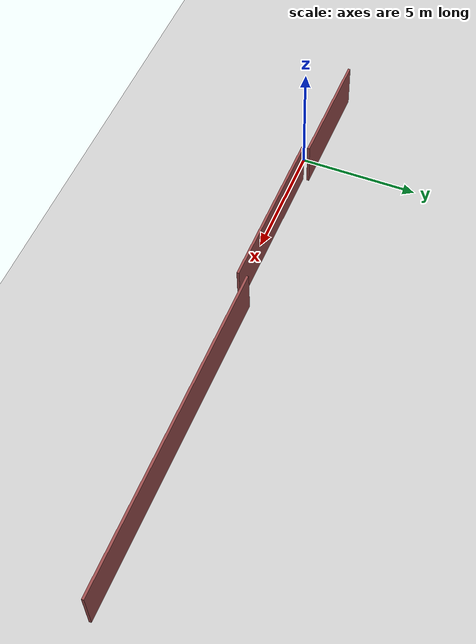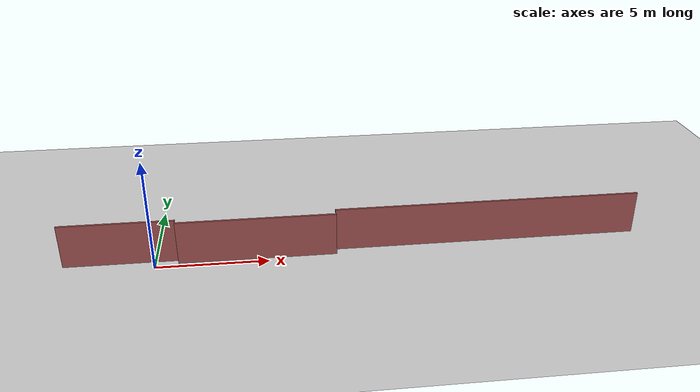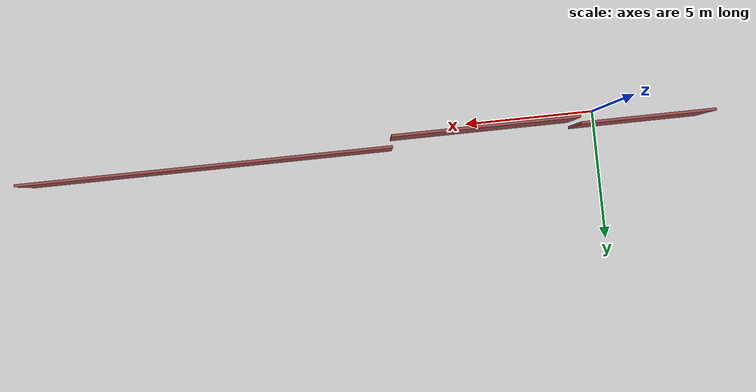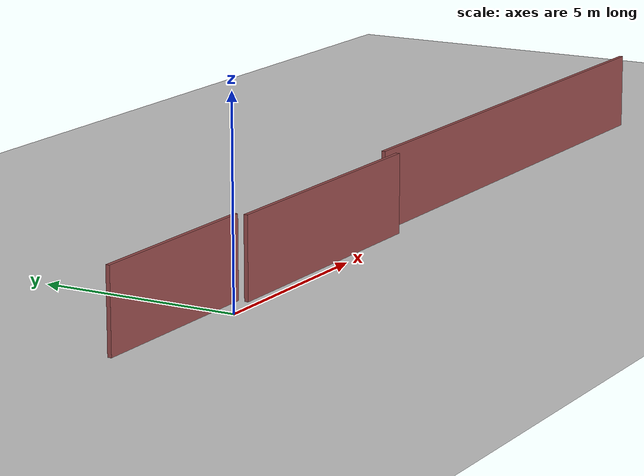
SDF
<?xml version="1.0" ?>
<sdf version="1.6">
  <world name="sim_pared_world">
    <physics name="1ms" type="ignored">
      <max_step_size>0.001</max_step_size>
      <real_time_factor>1.0</real_time_factor>
    </physics>

    <!-- Plugins base para Ignition Fortress -->
    <plugin filename="libignition-gazebo-physics-system.so" name="ignition::gazebo::systems::Physics"/>
    <plugin filename="libignition-gazebo-user-commands-system.so" name="ignition::gazebo::systems::UserCommands"/>
    <plugin filename="libignition-gazebo-scene-broadcaster-system.so" name="ignition::gazebo::systems::SceneBroadcaster"/>
    <plugin filename="libignition-gazebo-sensors-system.so" name="ignition::gazebo::systems::Sensors">
      <render_engine>ogre2</render_engine>
    </plugin>

    <scene>
      <ambient>0.8 0.8 0.8 1</ambient>
      <background>0.7 0.7 0.7 1</background>
      <shadows>true</shadows>
    </scene>

    <light type="directional" name="sun">
      <cast_shadows>true</cast_shadows>
      <pose>0 0 10 0 0 0</pose>
      <diffuse>0.8 0.8 0.8 1</diffuse>
      <specular>0.2 0.2 0.2 1</specular>
      <attenuation>
        <range>1000</range>
        <constant>0.9</constant>
        <linear>0.01</linear>
        <quadratic>0.001</quadratic>
      </attenuation>
      <direction>-0.5 0.1 -0.9</direction>
    </light>

    <model name="ground_plane">
      <static>true</static>
      <link name="link">
        <collision name="collision">
          <geometry><plane><normal>0 0 1</normal><size>100 100</size></plane></geometry>
        </collision>
        <visual name="visual">
          <geometry><plane><normal>0 0 1</normal><size>100 100</size></plane></geometry>
          <material>
            <ambient>0.8 0.8 0.8 1</ambient>
            <diffuse>0.8 0.8 0.8 1</diffuse>
            <specular>0.8 0.8 0.8 1</specular>
          </material>
        </visual>
      </link>
    </model>

    <!-- Tramo 1: Pared inicial a 0.50m a la izquierda del robot (X de -4.0m a 1.0m, cara interna en Y = +0.50m) -->
    <model name="pared_izquierda_tramo1">
      <static>true</static>
      <pose>-1.5 0.55 1.0 0 0 0</pose>
      <link name="link">
        <collision name="collision">
          <geometry><box><size>5.0 0.1 2.0</size></box></geometry>
        </collision>
        <visual name="visual">
          <geometry><box><size>5.0 0.1 2.0</size></box></geometry>
          <material>
            <ambient>0.4 0.2 0.2 1</ambient>
            <diffuse>0.6 0.3 0.3 1</diffuse>
            <specular>0.2 0.2 0.2 1</specular>
          </material>
        </visual>
      </link>
    </model>

    <!-- Tramo 2: Pared desplazada 25 cm hacia el robot (X de 1.0m a 8.0m, cara interna en Y = +0.25m) -->
    <model name="pared_izquierda_tramo2">
      <static>true</static>
      <pose>4.5 0.30 1.0 0 0 0</pose>
      <link name="link">
        <collision name="collision">
          <geometry><box><size>7.0 0.1 2.0</size></box></geometry>
        </collision>
        <visual name="visual">
          <geometry><box><size>7.0 0.1 2.0</size></box></geometry>
          <material>
            <ambient>0.4 0.2 0.2 1</ambient>
            <diffuse>0.6 0.3 0.3 1</diffuse>
            <specular>0.2 0.2 0.2 1</specular>
          </material>
        </visual>
      </link>
    </model>

    <!-- Tramo 3: Pared desplazada 40 cm hacia la izquierda (X de 8.0m a 22.0m, cara interna en Y = +0.65m) -->
    <model name="pared_izquierda_tramo3">
      <static>true</static>
      <pose>15.0 0.70 1.0 0 0 0</pose>
      <link name="link">
        <collision name="collision">
          <geometry><box><size>14.0 0.1 2.0</size></box></geometry>
        </collision>
        <visual name="visual">
          <geometry><box><size>14.0 0.1 2.0</size></box></geometry>
          <material>
            <ambient>0.4 0.2 0.2 1</ambient>
            <diffuse>0.6 0.3 0.3 1</diffuse>
            <specular>0.2 0.2 0.2 1</specular>
          </material>
        </visual>
      </link>
    </model>
  </world>
</sdf>
